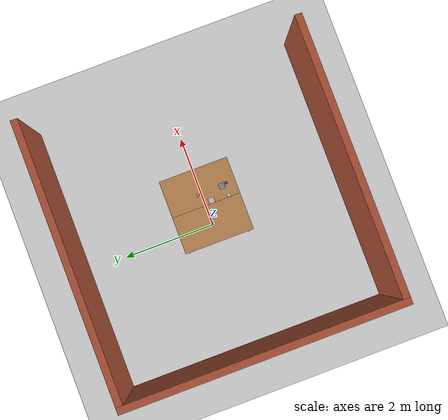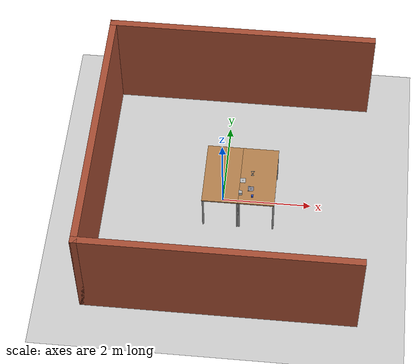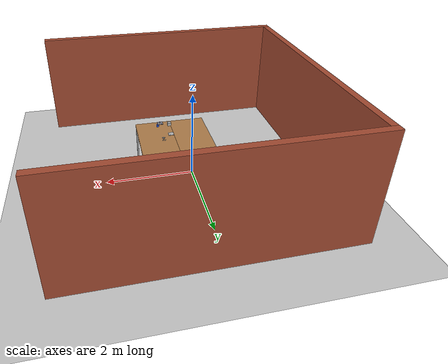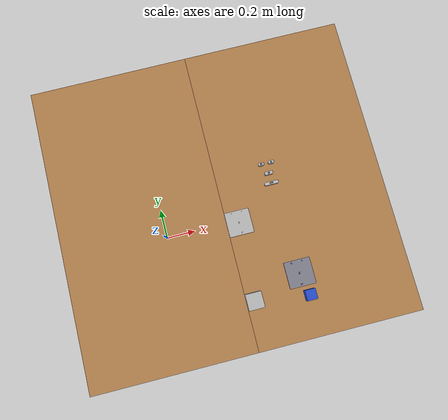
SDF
<sdf version="1.7">
 <world name="default">
  <light name="sun" type="directional">
   <pose>0 0 10 0 -0 0</pose>
   <diffuse>0.8 0.8 0.8 1</diffuse>
   <specular>0.2 0.2 0.2 1</specular>
   <attenuation>
    <range>1000</range>
    <constant>0.9</constant>
    <linear>0.01</linear>
    <quadratic>0.001</quadratic>
   </attenuation>
   <direction>-0.5 0.1 -0.9</direction>
   <spot><inner_angle>0</inner_angle><outer_angle>0</outer_angle><falloff>0</falloff></spot>
  </light>
  <model name="ground_plane">
   <static>1</static>
   <link name="link">
    <collision name="collision">
     <geometry><plane><normal>0 0 1</normal><size>100 100</size></plane></geometry>
     <surface><friction><ode><mu>100</mu><mu2>50</mu2></ode></friction></surface>
    </collision>
    <visual name="visual">
     <cast_shadows>0</cast_shadows>
     <geometry><plane><normal>0 0 1</normal><size>100 100</size></plane></geometry>
     <material>
      <script><uri>file://media/materials/scripts/gazebo.material</uri><name>Gazebo/Grey</name></script>
     </material>
    </visual>
   </link>
  </model>
  <gravity>0 0 -9.8</gravity>
  <magnetic_field>6e-06 2.3e-05 -4.2e-05</magnetic_field>
  <atmosphere type="adiabatic"/>
  <physics type="ode">
   <max_step_size>0.001</max_step_size>
   <real_time_factor>1</real_time_factor>
   <real_time_update_rate>1000</real_time_update_rate>
   <ode>
    <solver><type>quick</type><iters>200</iters><sor>1.3</sor></solver>
    <constraints>
     <cfm>0.0</cfm>
     <erp>0.2</erp>
     <contact_max_correcting_vel>0.1</contact_max_correcting_vel>
     <contact_surface_layer>0.001</contact_surface_layer>
    </constraints>
   </ode>
  </physics>
  <scene><ambient>0.4 0.4 0.4 1</ambient><background>0.7 0.7 0.7 1</background><shadows>1</shadows></scene>
  <audio><device>default</device></audio>
  <spherical_coordinates>
   <surface_model>EARTH_WGS84</surface_model>
   <latitude_deg>0</latitude_deg>
   <longitude_deg>0</longitude_deg>
   <elevation>0</elevation>
   <heading_deg>0</heading_deg>
  </spherical_coordinates>
  <model name="table">
   <static>1</static>
   <link name="link">
    <collision name="surface">
     <pose>0 0 1 0 -0 0</pose>
     <geometry><box><size>1.5 0.8 0.03</size></box></geometry>
     <surface><friction><ode><mu>0.6</mu><mu2>0.6</mu2></ode></friction></surface>
    </collision>
    <visual name="visual1">
     <pose>0 0 1 0 -0 0</pose>
     <geometry><box><size>1.5 0.8 0.03</size></box></geometry>
     <material>
      <script><uri>file://media/materials/scripts/gazebo.material</uri><name>Gazebo/Wood</name></script>
     </material>
    </visual>
    <collision name="front_left_leg">
     <pose>0.68 0.38 0.5 0 -0 0</pose>
     <geometry><cylinder><radius>0.02</radius><length>1</length></cylinder></geometry>
    </collision>
    <visual name="front_left_leg_visual">
     <pose>0.68 0.38 0.5 0 -0 0</pose>
     <geometry><cylinder><radius>0.02</radius><length>1</length></cylinder></geometry>
     <material>
      <script><uri>file://media/materials/scripts/gazebo.material</uri><name>Gazebo/Grey</name></script>
     </material>
    </visual>
    <collision name="front_right_leg">
     <pose>0.68 -0.38 0.5 0 -0 0</pose>
     <geometry><cylinder><radius>0.02</radius><length>1</length></cylinder></geometry>
    </collision>
    <visual name="front_right_leg_visual">
     <pose>0.68 -0.38 0.5 0 -0 0</pose>
     <geometry><cylinder><radius>0.02</radius><length>1</length></cylinder></geometry>
     <material>
      <script><uri>file://media/materials/scripts/gazebo.material</uri><name>Gazebo/Grey</name></script>
     </material>
    </visual>
    <collision name="back_right_leg">
     <pose>-0.68 -0.38 0.5 0 -0 0</pose>
     <geometry><cylinder><radius>0.02</radius><length>1</length></cylinder></geometry>
    </collision>
    <visual name="back_right_leg_visual">
     <pose>-0.68 -0.38 0.5 0 -0 0</pose>
     <geometry><cylinder><radius>0.02</radius><length>1</length></cylinder></geometry>
     <material>
      <script><uri>file://media/materials/scripts/gazebo.material</uri><name>Gazebo/Grey</name></script>
     </material>
    </visual>
    <collision name="back_left_leg">
     <pose>-0.68 0.38 0.5 0 -0 0</pose>
     <geometry><cylinder><radius>0.02</radius><length>1</length></cylinder></geometry>
    </collision>
    <visual name="back_left_leg_visual">
     <pose>-0.68 0.38 0.5 0 -0 0</pose>
     <geometry><cylinder><radius>0.02</radius><length>1</length></cylinder></geometry>
     <material>
      <script><uri>file://media/materials/scripts/gazebo.material</uri><name>Gazebo/Grey</name></script>
     </material>
    </visual>
   </link>
   <pose>0 0 0 0 -0 1.5708</pose>
  </model>
  <model name="table_0">
   <static>1</static>
   <link name="link">
    <collision name="surface">
     <pose>0 0 1 0 -0 0</pose>
     <geometry><box><size>1.5 0.8 0.03</size></box></geometry>
     <surface><friction><ode><mu>0.6</mu><mu2>0.6</mu2></ode></friction></surface>
    </collision>
    <visual name="visual1">
     <pose>0 0 1 0 -0 0</pose>
     <geometry><box><size>1.5 0.8 0.03</size></box></geometry>
     <material>
      <script><uri>file://media/materials/scripts/gazebo.material</uri><name>Gazebo/Wood</name></script>
     </material>
    </visual>
    <collision name="front_left_leg">
     <pose>0.68 0.38 0.5 0 -0 0</pose>
     <geometry><cylinder><radius>0.02</radius><length>1</length></cylinder></geometry>
    </collision>
    <visual name="front_left_leg_visual">
     <pose>0.68 0.38 0.5 0 -0 0</pose>
     <geometry><cylinder><radius>0.02</radius><length>1</length></cylinder></geometry>
     <material>
      <script><uri>file://media/materials/scripts/gazebo.material</uri><name>Gazebo/Grey</name></script>
     </material>
    </visual>
    <collision name="front_right_leg">
     <pose>0.68 -0.38 0.5 0 -0 0</pose>
     <geometry><cylinder><radius>0.02</radius><length>1</length></cylinder></geometry>
    </collision>
    <visual name="front_right_leg_visual">
     <pose>0.68 -0.38 0.5 0 -0 0</pose>
     <geometry><cylinder><radius>0.02</radius><length>1</length></cylinder></geometry>
     <material>
      <script><uri>file://media/materials/scripts/gazebo.material</uri><name>Gazebo/Grey</name></script>
     </material>
    </visual>
    <collision name="back_right_leg">
     <pose>-0.68 -0.38 0.5 0 -0 0</pose>
     <geometry><cylinder><radius>0.02</radius><length>1</length></cylinder></geometry>
    </collision>
    <visual name="back_right_leg_visual">
     <pose>-0.68 -0.38 0.5 0 -0 0</pose>
     <geometry><cylinder><radius>0.02</radius><length>1</length></cylinder></geometry>
     <material>
      <script><uri>file://media/materials/scripts/gazebo.material</uri><name>Gazebo/Grey</name></script>
     </material>
    </visual>
    <collision name="back_left_leg">
     <pose>-0.68 0.38 0.5 0 -0 0</pose>
     <geometry><cylinder><radius>0.02</radius><length>1</length></cylinder></geometry>
    </collision>
    <visual name="back_left_leg_visual">
     <pose>-0.68 0.38 0.5 0 -0 0</pose>
     <geometry><cylinder><radius>0.02</radius><length>1</length></cylinder></geometry>
     <material>
      <script><uri>file://media/materials/scripts/gazebo.material</uri><name>Gazebo/Grey</name></script>
     </material>
    </visual>
   </link>
   <pose>0.8 0 0 0 -0 1.5708</pose>
  </model>
  <model name="building">
   <pose>0.172106 -0.01584 0 0 -0 0</pose>
   <link name="Wall_14">
    <collision name="Wall_14_Collision">
     <geometry><box><size>6 0.15 2.5</size></box></geometry>
     <pose>0 0 1.25 0 -0 0</pose>
    </collision>
    <visual name="Wall_14_Visual">
     <pose>0 0 1.25 0 -0 0</pose>
     <geometry><box><size>6 0.15 2.5</size></box></geometry>
     <material>
      <script><uri>file://media/materials/scripts/gazebo.material</uri><name>Gazebo/Bricks</name></script>
      <ambient>1 1 1 1</ambient>
     </material>
     <meta><layer>0</layer></meta>
    </visual>
    <pose>0 2.925 0 0 -0 0</pose>
   </link>
   <link name="Wall_16">
    <collision name="Wall_16_Collision">
     <geometry><box><size>6 0.15 2.5</size></box></geometry>
     <pose>0 0 1.25 0 -0 0</pose>
    </collision>
    <visual name="Wall_16_Visual">
     <pose>0 0 1.25 0 -0 0</pose>
     <geometry><box><size>6 0.15 2.5</size></box></geometry>
     <material>
      <script><uri>file://media/materials/scripts/gazebo.material</uri><name>Gazebo/Bricks</name></script>
      <ambient>1 1 1 1</ambient>
     </material>
     <meta><layer>0</layer></meta>
    </visual>
    <pose>0 -2.925 0 0 -0 0</pose>
   </link>
   <link name="Wall_9">
    <collision name="Wall_9_Collision">
     <geometry><box><size>6 0.15 2.5</size></box></geometry>
     <pose>0 0 1.25 0 -0 0</pose>
    </collision>
    <visual name="Wall_9_Visual">
     <pose>0 0 1.25 0 -0 0</pose>
     <geometry><box><size>6 0.15 2.5</size></box></geometry>
     <material>
      <script><uri>file://media/materials/scripts/gazebo.material</uri><name>Gazebo/Bricks</name></script>
      <ambient>1 1 1 1</ambient>
     </material>
     <meta><layer>0</layer></meta>
    </visual>
    <pose>-2.925 0 0 0 -0 1.5708</pose>
   </link>
   <static>1</static>
  </model>
  <model name="blue_box">
   <link name="link">
    <inertial>
     <mass>1</mass>
     <inertia>
      <ixx>0.166667</ixx>
      <ixy>0</ixy>
      <ixz>0</ixz>
      <iyy>0.166667</iyy>
      <iyz>0</iyz>
      <izz>0.166667</izz>
     </inertia>
    </inertial>
    <visual name="visual">
     <geometry><box><size>0.05 0.05 0.05</size></box></geometry>
     <material>
      <script><name>Gazebo/Blue</name><uri>file://media/materials/scripts/gazebo.material</uri></script>
      <shader type="pixel"><normal_map>__default__</normal_map></shader>
      <ambient>0 0 1 1</ambient>
      <diffuse>0 0 1 1</diffuse>
      <specular>0.1 0.1 0.1 1</specular>
      <emissive>0 0 0 1</emissive>
     </material>
    </visual>
    <collision name="collision">
     <geometry><box><size>0.05 0.05 0.05</size></box></geometry>
     <surface>
      <friction>
       <ode><mu>1</mu><mu2>1</mu2><fdir1>0 0 0</fdir1><slip1>0</slip1><slip2>0</slip2></ode>
       <torsional>
        <coefficient>1</coefficient>
        <patch_radius>0</patch_radius>
        <surface_radius>0</surface_radius>
        <use_patch_radius>1</use_patch_radius>
        <ode><slip>0</slip></ode>
       </torsional>
      </friction>
      <bounce><restitution_coefficient>0</restitution_coefficient><threshold>1e+06</threshold></bounce>
      <contact>
       <collide_without_contact>0</collide_without_contact>
       <collide_without_contact_bitmask>1</collide_without_contact_bitmask>
       <collide_bitmask>1</collide_bitmask>
       <ode>
        <soft_cfm>0</soft_cfm>
        <soft_erp>0.2</soft_erp>
        <kp>1e+13</kp>
        <kd>1</kd>
        <max_vel>0.01</max_vel>
        <min_depth>0</min_depth>
       </ode>
       <bullet>
        <split_impulse>1</split_impulse>
        <split_impulse_penetration_threshold>-0.01</split_impulse_penetration_threshold>
        <soft_cfm>0</soft_cfm>
        <soft_erp>0.2</soft_erp>
        <kp>1e+13</kp>
        <kd>1</kd>
       </bullet>
      </contact>
     </surface>
    </collision>
   </link>
   <static>0</static>
   <pose>0.699992 -0.55068 1.04 2e-06 -5e-06 8.7e-05</pose>
  </model>
  <model name="g0101">
   <pose>0.4 -0.2 0.91 0 0 0</pose>
   <link name="link">
    <inertial>
     <pose>0.060839 0.060523 0.112492 0 0 0</pose>
     <mass>0.3079</mass>
     <inertia>
      <ixx>3.682833e-04</ixx>
      <ixy>-7.284331e-14</ixy>
      <ixz>9.581626e-15</ixz>
      <iyy>3.734749e-04</iyy>
      <iyz>-5.319894e-08</iyz>
      <izz>7.384854e-04</izz>
     </inertia>
    </inertial>
    <visual name="visual">
     <geometry>
      <mesh><uri>file://gazebo/tooling_parts/g0101_obj.obj</uri><scale>0.001 0.001 0.001</scale></mesh>
     </geometry>
    </visual>
    <collision name="collision">
     <max_contacts>40</max_contacts>
     <geometry>
      <mesh><uri>file://gazebo/tooling_parts/g0101_obj.obj</uri><scale>0.001 0.001 0.001</scale></mesh>
     </geometry>
     <surface>
      <friction>
       <ode><mu>100.0</mu><mu2>50.0</mu2><slip1>0.0</slip1><slip2>0.0</slip2></ode>
       <torsional>
        <ode>
         <coefficient>1000.0</coefficient>
         <patch_radius>0.02</patch_radius>
         <surface_radius>0.02</surface_radius>
         <use_patch_radius>1</use_patch_radius>
        </ode>
       </torsional>
      </friction>
      <contact><ode><kp>1000000.0</kp><kd>300.0</kd><min_depth>0</min_depth><max_vel>0.0</max_vel></ode></contact>
     </surface>
    </collision>
   </link>
   <static>0</static>
  </model>
  <model name="g0601">
   <pose>0.6 0 0.91 0 0 0</pose>
   <link name="link">
    <inertial>
     <pose>0.060839 0.060555 0.124000 0 0 0</pose>
     <mass>0.0228</mass>
     <inertia>
      <ixx>9.456258e-07</ixx>
      <ixy>-1.035972e-10</ixy>
      <ixz>2.298131e-13</ixz>
      <iyy>3.745820e-06</iyy>
      <iyz>1.857071e-15</iyz>
      <izz>3.837297e-06</izz>
     </inertia>
    </inertial>
    <visual name="visual">
     <geometry>
      <mesh><uri>file://gazebo/tooling_parts/g0601_obj.obj</uri><scale>0.001 0.001 0.001</scale></mesh>
     </geometry>
    </visual>
    <collision name="collision">
     <geometry>
      <mesh><uri>file://gazebo/tooling_parts/g0601_obj.obj</uri><scale>0.001 0.001 0.001</scale></mesh>
     </geometry>
     <surface>
      <friction>
       <ode><mu>100.0</mu><mu2>50.0</mu2></ode>
       <torsional>
        <ode>
         <coefficient>1000.0</coefficient>
         <patch_radius>0.02</patch_radius>
         <surface_radius>0.02</surface_radius>
         <use_patch_radius>1</use_patch_radius>
        </ode>
       </torsional>
      </friction>
      <contact>
       <ode><kp>1000000.0</kp><kd>100.0</kd><min_depth>0.00001</min_depth><max_vel>0.0</max_vel></ode>
      </contact>
     </surface>
    </collision>
   </link>
   <static>0</static>
  </model>
  <model name="g0701">
   <pose>0.6 0 0.91 0 0 0</pose>
   <link name="link">
    <inertial>
     <pose>0.060839 0.009555 0.124000 0 0 0</pose>
     <mass>0.0377</mass>
     <inertia>
      <ixx>1.553356e-06</ixx>
      <ixy>6.204517e-11</ixy>
      <ixz>8.480480e-14</ixz>
      <iyy>1.659819e-05</iyy>
      <iyz>1.942913e-15</iyz>
      <izz>1.674104e-05</izz>
     </inertia>
    </inertial>
    <visual name="visual">
     <geometry>
      <mesh><uri>file://gazebo/tooling_parts/g0701_obj.obj</uri><scale>0.001 0.001 0.001</scale></mesh>
     </geometry>
    </visual>
    <collision name="collision">
     <geometry>
      <mesh><uri>file://gazebo/tooling_parts/g0701_obj.obj</uri><scale>0.001 0.001 0.001</scale></mesh>
     </geometry>
     <surface>
      <friction>
       <ode><mu>100.0</mu><mu2>50.0</mu2></ode>
       <torsional>
        <ode>
         <coefficient>1000.0</coefficient>
         <patch_radius>0.02</patch_radius>
         <surface_radius>0.02</surface_radius>
         <use_patch_radius>1</use_patch_radius>
        </ode>
       </torsional>
      </friction>
      <contact>
       <ode><kp>1000000.0</kp><kd>100.0</kd><min_depth>0.00001</min_depth><max_vel>0.0</max_vel></ode>
      </contact>
     </surface>
    </collision>
   </link>
   <static>0</static>
  </model>
  <model name="g0801">
   <pose>0.6 0 0.91 0 0 0</pose>
   <link name="link">
    <inertial>
     <pose>0.035839 0.111555 0.124000 0 0 0</pose>
     <mass>0.0151</mass>
     <inertia>
      <ixx>5.966443e-07</ixx>
      <ixy>2.743851e-12</ixy>
      <ixz>-1.614315e-11</ixz>
      <iyy>1.335190e-06</iyy>
      <iyz>1.994090e-14</iyz>
      <izz>1.367014e-06</izz>
     </inertia>
    </inertial>
    <visual name="visual">
     <geometry>
      <mesh><uri>file://gazebo/tooling_parts/g0801_obj.obj</uri><scale>0.001 0.001 0.001</scale></mesh>
     </geometry>
    </visual>
    <collision name="collision">
     <max_contacts>40</max_contacts>
     <geometry>
      <mesh><uri>file://gazebo/tooling_parts/g0801_obj.obj</uri><scale>0.001 0.001 0.001</scale></mesh>
     </geometry>
     <surface>
      <friction>
       <ode><mu>100.0</mu><mu2>50.0</mu2><slip1>0.0</slip1><slip2>0.0</slip2></ode>
       <torsional>
        <ode>
         <coefficient>1000.0</coefficient>
         <patch_radius>0.02</patch_radius>
         <surface_radius>0.02</surface_radius>
         <use_patch_radius>1</use_patch_radius>
        </ode>
       </torsional>
      </friction>
      <contact>
       <ode><kp>1000000.0</kp><kd>300.0</kd><min_depth>0.00001</min_depth><max_vel>0.0</max_vel></ode>
      </contact>
     </surface>
    </collision>
   </link>
   <static>0</static>
  </model>
  <model name="g0802">
   <pose>0.6 0 0.91 0 0 0</pose>
   <link name="link">
    <inertial>
     <pose>0.085839 0.111555 0.124000 0 0 0</pose>
     <mass>0.0151</mass>
     <inertia>
      <ixx>5.966443e-07</ixx>
      <ixy>2.743941e-12</ixy>
      <ixz>-1.613940e-11</ixz>
      <iyy>1.335190e-06</iyy>
      <iyz>1.997946e-14</iyz>
      <izz>1.367014e-06</izz>
     </inertia>
    </inertial>
    <visual name="visual">
     <geometry>
      <mesh><uri>file://gazebo/tooling_parts/g0802_obj.obj</uri><scale>0.001 0.001 0.001</scale></mesh>
     </geometry>
    </visual>
    <collision name="collision">
     <geometry>
      <mesh><uri>file://gazebo/tooling_parts/g0802_obj.obj</uri><scale>0.001 0.001 0.001</scale></mesh>
     </geometry>
     <surface>
      <friction>
       <ode><mu>100.0</mu><mu2>50.0</mu2></ode>
       <torsional>
        <ode>
         <coefficient>1000.0</coefficient>
         <patch_radius>0.02</patch_radius>
         <surface_radius>0.02</surface_radius>
         <use_patch_radius>1</use_patch_radius>
        </ode>
       </torsional>
      </friction>
      <contact>
       <ode><kp>1000000.0</kp><kd>100.0</kd><min_depth>0.00001</min_depth><max_vel>0.0</max_vel></ode>
      </contact>
     </surface>
    </collision>
   </link>
   <static>0</static>
  </model>
  <model name="cube">
   <pose>0.4 -0.55 1.04 0 0 0</pose>
   <link name="link">
    <inertial>
     <pose>0.037500 0.037500 0.037500 0 0 0</pose>
     <mass>0.5062</mass>
     <inertia>
      <ixx>4.746094e-04</ixx>
      <ixy>3.811648e-19</ixy>
      <ixz>3.811648e-19</ixz>
      <iyy>4.746094e-04</iyy>
      <iyz>3.811648e-19</iyz>
      <izz>4.746094e-04</izz>
     </inertia>
    </inertial>
    <visual name="visual">
     <geometry><mesh><uri>file://gazebo/cube/cube_1.obj</uri><scale>1 1 1</scale></mesh></geometry>
    </visual>
    <collision name="collision">
     <geometry><mesh><uri>file://gazebo/cube/cube_1.obj</uri><scale>1 1 1</scale></mesh></geometry>
    </collision>
   </link>
   <static>0</static>
  </model>
  <model name="g0102">
   <pose>0.6 -0.5 1.04 0 0 0</pose>
   <link name="link">
    <inertial>
     <pose>0.060000 0.059790 0.113809 0 0 0</pose>
     <mass>0.3206</mass>
     <inertia>
      <ixx>3.952366e-04</ixx>
      <ixy>2.493096e-10</ixy>
      <ixz>4.452509e-11</ixz>
      <iyy>3.774952e-04</iyy>
      <iyz>7.563368e-07</iyz>
      <izz>7.672021e-04</izz>
     </inertia>
    </inertial>
    <visual name="visual">
     <geometry>
      <mesh><uri>file://gazebo/tooling_parts/g0102.STL</uri><scale>0.001 0.001 0.001</scale></mesh>
     </geometry>
     <material>
      <ambient>0.4 0.4 0.45 1</ambient>
      <diffuse>0.5 0.5 0.55 1</diffuse>
      <specular>0.3 0.3 0.3 1</specular>
      <emissive>0 0 0 1</emissive>
     </material>
    </visual>
    <collision name="collision">
     <geometry>
      <mesh><uri>file://gazebo/tooling_parts/g0102.STL</uri><scale>0.001 0.001 0.001</scale></mesh>
     </geometry>
    </collision>
   </link>
   <static>0</static>
  </model>
  <plugin name="gazebo_link_attacher" filename="libgazebo_link_attacher.so"/>
 </world>
</sdf>
